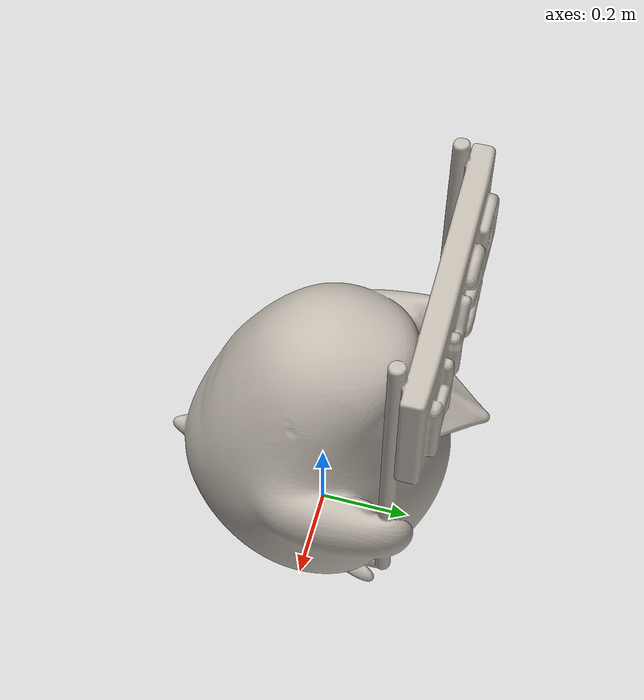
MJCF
<?xml version='1.0' encoding='utf-8'?>
<mujoco model="penguin"><compiler angle="radian" inertiafromgeom="false" /><asset><mesh name="visual_000" file="meshes/visual_000.obj" /><texture name="visual_000_tex" type="2d" file="textures/visual_000.png" /><material name="visual_000_mat" rgba="1 1 1 1" specular="0" shininess="0" texture="visual_000_tex" texuniform="false" /><mesh name="collision_mesh" file="meshes/collision.obj" /></asset><worldbody><body name="penguin"><geom name="visual_000" type="mesh" mesh="visual_000" material="visual_000_mat" mass="0" contype="0" conaffinity="0" group="2" /><geom name="asset_collision" type="mesh" mesh="collision_mesh" mass="0" contype="1" conaffinity="1" group="3" rgba="0 1 0 .25" /></body></worldbody></mujoco>
